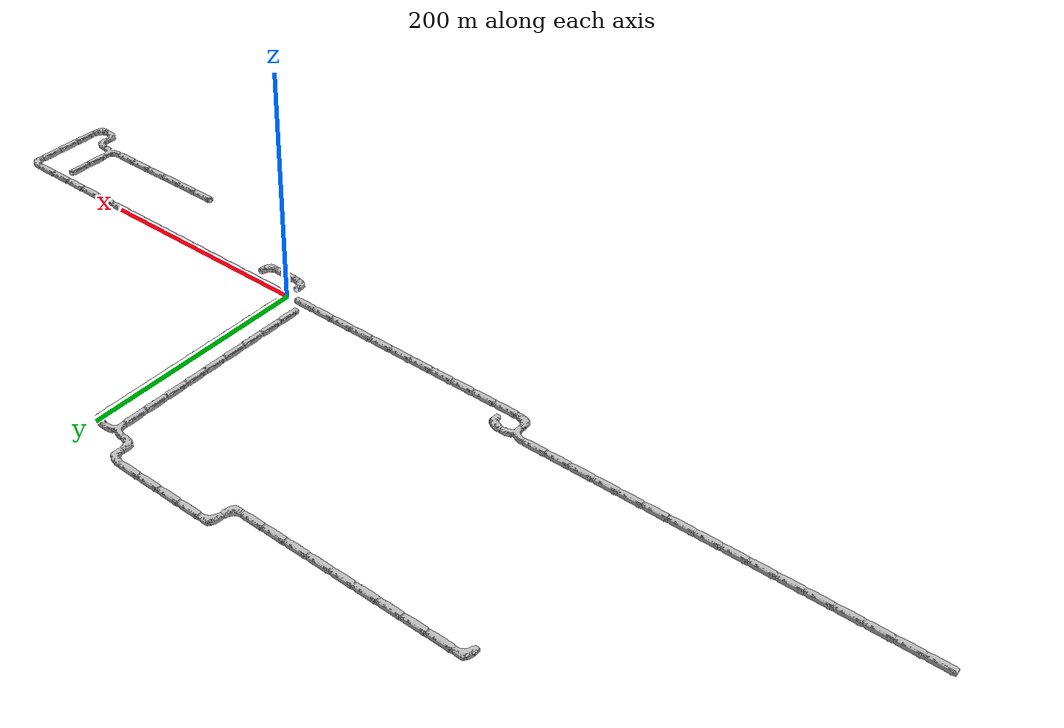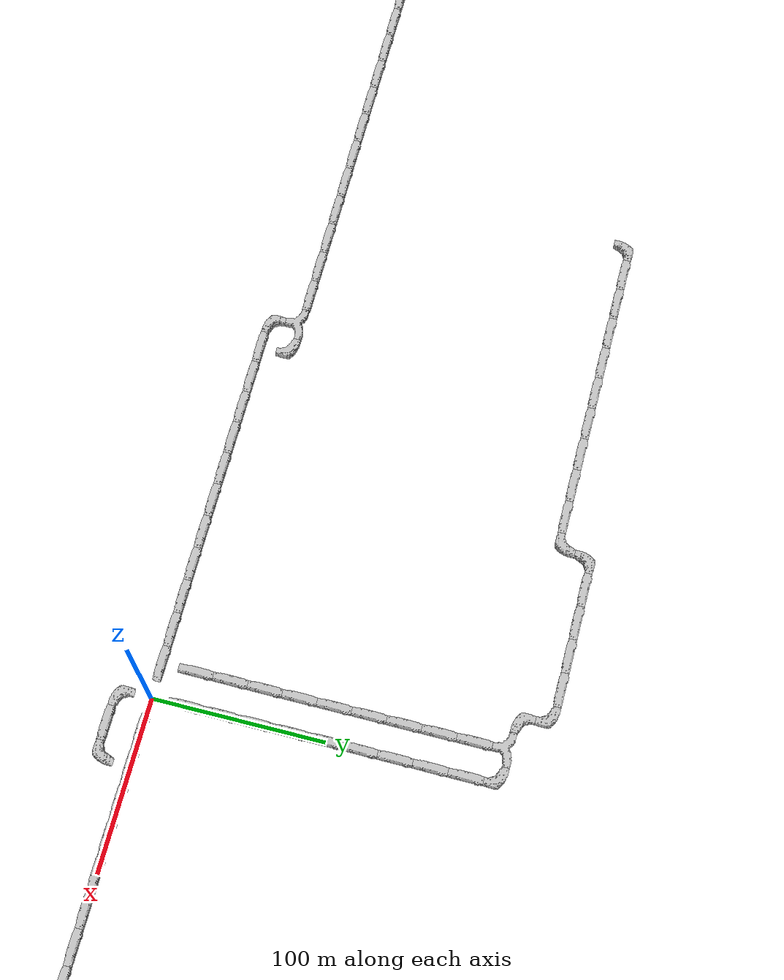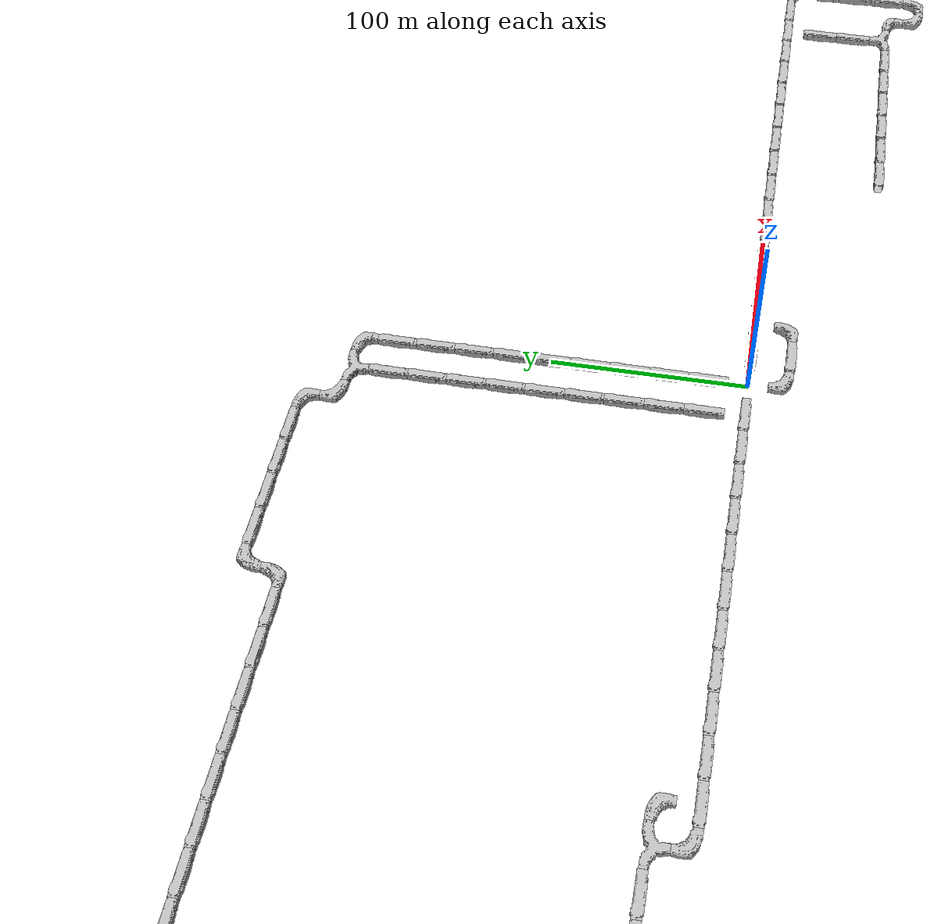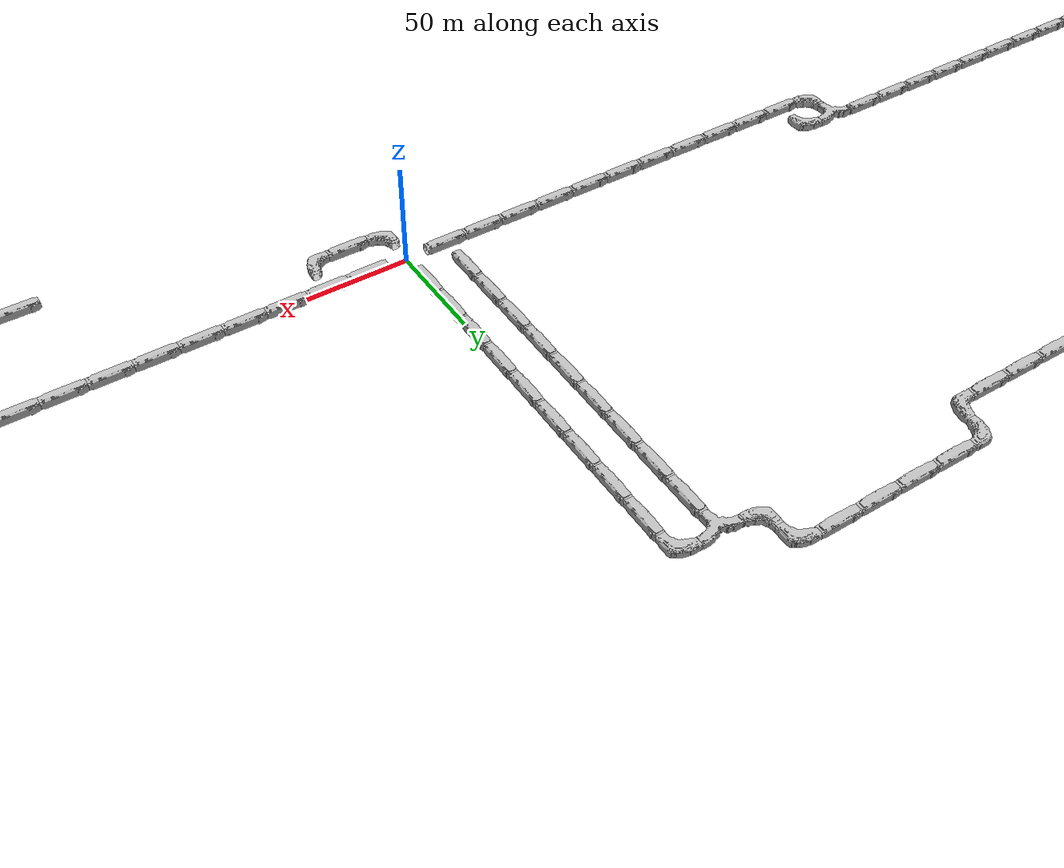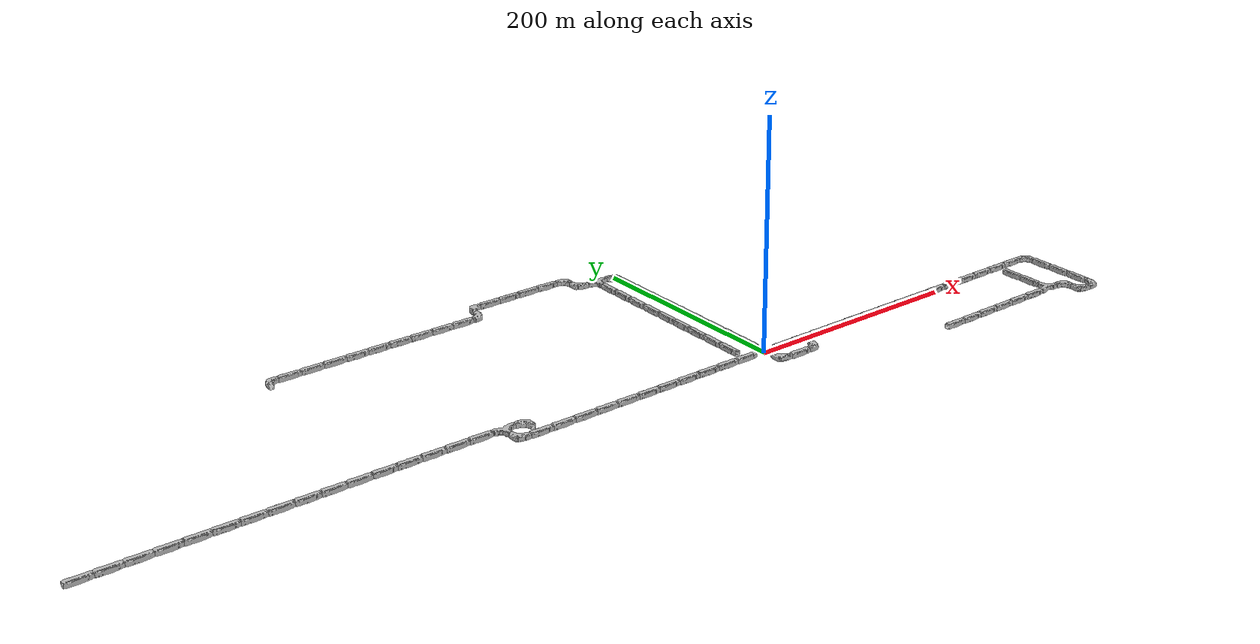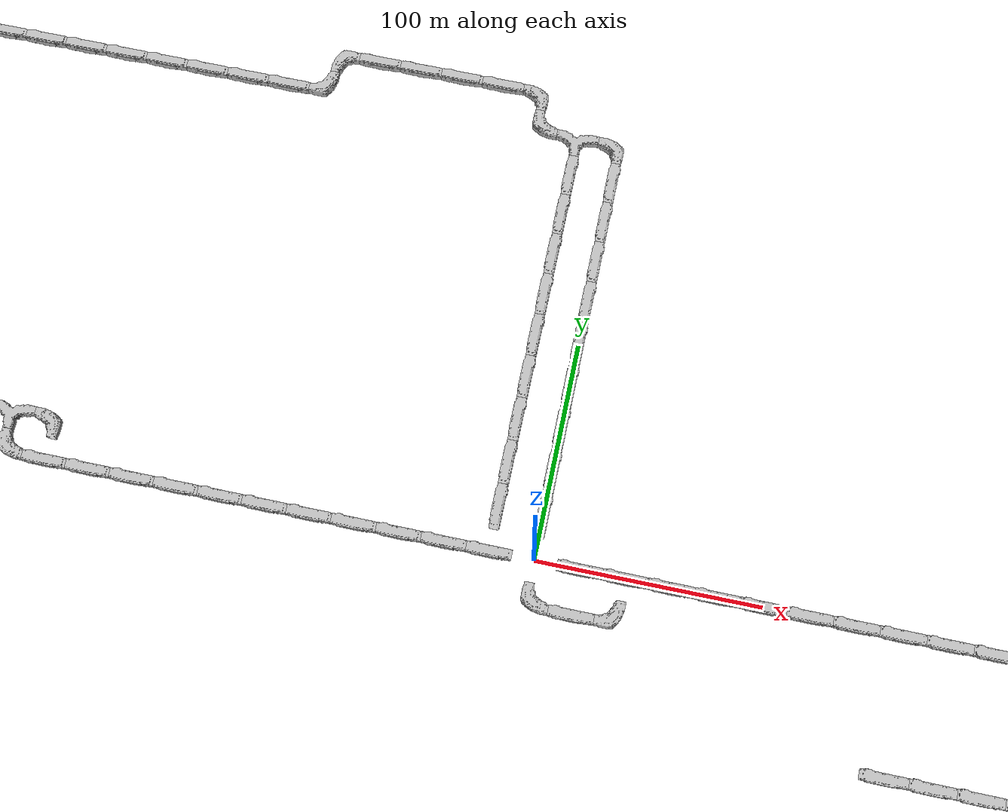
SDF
<sdf version="1.6">
 <world name="cave_2000_32">
  <include>
   <static>true</static>
   <name>cave_1_0</name>
   <pose>20 0 0 0 0 1.5707963267948966</pose>
   <uri>model://cave_straight_20m</uri>
  </include>
  <include>
   <static>true</static>
   <name>cave_2_0</name>
   <pose>40 0 0 0 0 1.5707963267948966</pose>
   <uri>model://cave_straight_20m</uri>
  </include>
  <include>
   <static>true</static>
   <name>cave_3_0</name>
   <pose>60 0 0 0 0 1.5707963267948966</pose>
   <uri>model://cave_straight_20m</uri>
  </include>
  <include>
   <static>true</static>
   <name>cave_4_0</name>
   <pose>80 0 0 0 0 1.5707963267948966</pose>
   <uri>model://cave_straight_20m</uri>
  </include>
  <include>
   <static>true</static>
   <name>cave_5_0</name>
   <pose>100 0 0 0 0 1.5707963267948966</pose>
   <uri>model://cave_straight_20m</uri>
  </include>
  <include>
   <static>true</static>
   <name>cave_6_0</name>
   <pose>120 0 0 0 0 1.5707963267948966</pose>
   <uri>model://cave_straight_20m</uri>
  </include>
  <include>
   <static>true</static>
   <name>cave_7_0</name>
   <pose>140 0 0 0 0 1.5707963267948966</pose>
   <uri>model://cave_straight_20m</uri>
  </include>
  <include>
   <static>true</static>
   <name>cave_8_0</name>
   <pose>160 0 0 0 0 1.5707963267948966</pose>
   <uri>model://cave_straight_20m</uri>
  </include>
  <include>
   <static>true</static>
   <name>cave_9_0</name>
   <pose>180 0 0 0 0 1.5707963267948966</pose>
   <uri>model://cave_straight_20m</uri>
  </include>
  <include>
   <static>true</static>
   <name>cave_10_0</name>
   <pose>200 0 0 0 0 1.5707963267948966</pose>
   <uri>model://cave_straight_20m</uri>
  </include>
  <include>
   <static>true</static>
   <name>cave_11_0</name>
   <pose>220 0 0 0 0 1.5707963267948966</pose>
   <uri>model://cave_straight_20m</uri>
  </include>
  <include>
   <static>true</static>
   <name>cave_12_0</name>
   <pose>240 0 0 0 0 1.5707963267948966</pose>
   <uri>model://cave_straight_20m</uri>
  </include>
  <include>
   <static>true</static>
   <name>cave_13_0</name>
   <pose>260 0 0 0 0 1.5707963267948966</pose>
   <uri>model://cave_straight_20m</uri>
  </include>
  <include>
   <static>true</static>
   <name>cave_14_0</name>
   <pose>280 0 0 0 0 1.5707963267948966</pose>
   <uri>model://cave_straight_20m</uri>
  </include>
  <include>
   <static>true</static>
   <name>cave_15_0</name>
   <pose>300 0 0 0 0 1.5707963267948966</pose>
   <uri>model://cave_straight_20m</uri>
  </include>
  <include>
   <static>true</static>
   <name>cave_16_0</name>
   <pose>320 0 0 0 0 3.141592653589793</pose>
   <uri>model://cave_L_20m</uri>
  </include>
  <include>
   <static>true</static>
   <name>cave_16_-1</name>
   <pose>320 -20 0 0 0 0.0</pose>
   <uri>model://cave_straight_20m</uri>
  </include>
  <include>
   <static>true</static>
   <name>cave_16_-2</name>
   <pose>320 -40 0 0 0 0.0</pose>
   <uri>model://cave_straight_20m</uri>
  </include>
  <include>
   <static>true</static>
   <name>cave_16_-3</name>
   <pose>320 -60 0 0 0 0.0</pose>
   <uri>model://cave_straight_20m</uri>
  </include>
  <include>
   <static>true</static>
   <name>cave_16_-4</name>
   <pose>320 -80 0 0 0 1.5707963267948966</pose>
   <uri>model://cave_L_20m</uri>
  </include>
  <include>
   <static>true</static>
   <name>cave_15_-4</name>
   <pose>300 -80 0 0 0 0.0</pose>
   <uri>model://cave_L_20m</uri>
  </include>
  <include>
   <static>true</static>
   <name>cave_15_-3</name>
   <pose>300 -60 0 0 0 3.141592653589793</pose>
   <uri>model://cave_L_20m</uri>
  </include>
  <include>
   <static>true</static>
   <name>cave_14_-3</name>
   <pose>280 -60 0 0 0 0.0</pose>
   <uri>model://cave_3way_20m</uri>
  </include>
  <include>
   <static>true</static>
   <name>cave_13_-3</name>
   <pose>260 -60 0 0 0 1.5707963267948966</pose>
   <uri>model://cave_straight_20m</uri>
  </include>
  <include>
   <static>true</static>
   <name>cave_12_-3</name>
   <pose>240 -60 0 0 0 1.5707963267948966</pose>
   <uri>model://cave_straight_20m</uri>
  </include>
  <include>
   <static>true</static>
   <name>cave_11_-3</name>
   <pose>220 -60 0 0 0 1.5707963267948966</pose>
   <uri>model://cave_straight_20m</uri>
  </include>
  <include>
   <static>true</static>
   <name>cave_10_-3</name>
   <pose>200 -60 0 0 0 1.5707963267948966</pose>
   <uri>model://cave_straight_20m</uri>
  </include>
  <include>
   <static>true</static>
   <name>cave_9_-3</name>
   <pose>180 -60 0 0 0 1.5707963267948966</pose>
   <uri>model://cave_straight_20m</uri>
  </include>
  <include>
   <static>true</static>
   <name>cave_8_-3</name>
   <pose>160 -60 0 0 0 1.5707963267948966</pose>
   <uri>model://cave_straight_20m</uri>
  </include>
  <include>
   <static>true</static>
   <name>cave_14_-2</name>
   <pose>280 -40 0 0 0 0.0</pose>
   <uri>model://cave_straight_20m</uri>
  </include>
  <include>
   <static>true</static>
   <name>cave_14_-1</name>
   <pose>280 -20 0 0 0 0.0</pose>
   <uri>model://cave_straight_20m</uri>
  </include>
  <include>
   <static>true</static>
   <name>cave_0_-1</name>
   <pose>0 -20 0 0 0 0.0</pose>
   <uri>model://cave_L_20m</uri>
  </include>
  <include>
   <static>true</static>
   <name>cave_1_-1</name>
   <pose>20 -20 0 0 0 1.5707963267948966</pose>
   <uri>model://cave_straight_20m</uri>
  </include>
  <include>
   <static>true</static>
   <name>cave_2_-1</name>
   <pose>40 -20 0 0 0 1.5707963267948966</pose>
   <uri>model://cave_L_20m</uri>
  </include>
  <include>
   <static>true</static>
   <name>cave_-1_0</name>
   <pose>-20 0 0 0 0 1.5707963267948966</pose>
   <uri>model://cave_straight_20m</uri>
  </include>
  <include>
   <static>true</static>
   <name>cave_-2_0</name>
   <pose>-40 0 0 0 0 1.5707963267948966</pose>
   <uri>model://cave_straight_20m</uri>
  </include>
  <include>
   <static>true</static>
   <name>cave_-3_0</name>
   <pose>-60 0 0 0 0 1.5707963267948966</pose>
   <uri>model://cave_straight_20m</uri>
  </include>
  <include>
   <static>true</static>
   <name>cave_-4_0</name>
   <pose>-80 0 0 0 0 1.5707963267948966</pose>
   <uri>model://cave_straight_20m</uri>
  </include>
  <include>
   <static>true</static>
   <name>cave_-5_0</name>
   <pose>-100 0 0 0 0 1.5707963267948966</pose>
   <uri>model://cave_straight_20m</uri>
  </include>
  <include>
   <static>true</static>
   <name>cave_-6_0</name>
   <pose>-120 0 0 0 0 1.5707963267948966</pose>
   <uri>model://cave_straight_20m</uri>
  </include>
  <include>
   <static>true</static>
   <name>cave_-7_0</name>
   <pose>-140 0 0 0 0 1.5707963267948966</pose>
   <uri>model://cave_straight_20m</uri>
  </include>
  <include>
   <static>true</static>
   <name>cave_-8_0</name>
   <pose>-160 0 0 0 0 1.5707963267948966</pose>
   <uri>model://cave_straight_20m</uri>
  </include>
  <include>
   <static>true</static>
   <name>cave_-9_0</name>
   <pose>-180 0 0 0 0 1.5707963267948966</pose>
   <uri>model://cave_straight_20m</uri>
  </include>
  <include>
   <static>true</static>
   <name>cave_-10_0</name>
   <pose>-200 0 0 0 0 1.5707963267948966</pose>
   <uri>model://cave_straight_20m</uri>
  </include>
  <include>
   <static>true</static>
   <name>cave_-11_0</name>
   <pose>-220 0 0 0 0 1.5707963267948966</pose>
   <uri>model://cave_straight_20m</uri>
  </include>
  <include>
   <static>true</static>
   <name>cave_-12_0</name>
   <pose>-240 0 0 0 0 0.0</pose>
   <uri>model://cave_L_20m</uri>
  </include>
  <include>
   <static>true</static>
   <name>cave_-12_1</name>
   <pose>-240 20 0 0 0 3.141592653589793</pose>
   <uri>model://cave_3way_20m</uri>
  </include>
  <include>
   <static>true</static>
   <name>cave_-11_1</name>
   <pose>-220 20 0 0 0 3.141592653589793</pose>
   <uri>model://cave_L_20m</uri>
  </include>
  <include>
   <static>true</static>
   <name>cave_-13_1</name>
   <pose>-260 20 0 0 0 1.5707963267948966</pose>
   <uri>model://cave_straight_20m</uri>
  </include>
  <include>
   <static>true</static>
   <name>cave_-14_1</name>
   <pose>-280 20 0 0 0 1.5707963267948966</pose>
   <uri>model://cave_straight_20m</uri>
  </include>
  <include>
   <static>true</static>
   <name>cave_-15_1</name>
   <pose>-300 20 0 0 0 1.5707963267948966</pose>
   <uri>model://cave_straight_20m</uri>
  </include>
  <include>
   <static>true</static>
   <name>cave_-16_1</name>
   <pose>-320 20 0 0 0 1.5707963267948966</pose>
   <uri>model://cave_straight_20m</uri>
  </include>
  <include>
   <static>true</static>
   <name>cave_-17_1</name>
   <pose>-340 20 0 0 0 1.5707963267948966</pose>
   <uri>model://cave_straight_20m</uri>
  </include>
  <include>
   <static>true</static>
   <name>cave_-18_1</name>
   <pose>-360 20 0 0 0 1.5707963267948966</pose>
   <uri>model://cave_straight_20m</uri>
  </include>
  <include>
   <static>true</static>
   <name>cave_-19_1</name>
   <pose>-380 20 0 0 0 1.5707963267948966</pose>
   <uri>model://cave_straight_20m</uri>
  </include>
  <include>
   <static>true</static>
   <name>cave_-20_1</name>
   <pose>-400 20 0 0 0 1.5707963267948966</pose>
   <uri>model://cave_straight_20m</uri>
  </include>
  <include>
   <static>true</static>
   <name>cave_-21_1</name>
   <pose>-420 20 0 0 0 1.5707963267948966</pose>
   <uri>model://cave_straight_20m</uri>
  </include>
  <include>
   <static>true</static>
   <name>cave_-22_1</name>
   <pose>-440 20 0 0 0 1.5707963267948966</pose>
   <uri>model://cave_straight_20m</uri>
  </include>
  <include>
   <static>true</static>
   <name>cave_-23_1</name>
   <pose>-460 20 0 0 0 1.5707963267948966</pose>
   <uri>model://cave_straight_20m</uri>
  </include>
  <include>
   <static>true</static>
   <name>cave_-24_1</name>
   <pose>-480 20 0 0 0 1.5707963267948966</pose>
   <uri>model://cave_straight_20m</uri>
  </include>
  <include>
   <static>true</static>
   <name>cave_-25_1</name>
   <pose>-500 20 0 0 0 1.5707963267948966</pose>
   <uri>model://cave_straight_20m</uri>
  </include>
  <include>
   <static>true</static>
   <name>cave_-26_1</name>
   <pose>-520 20 0 0 0 1.5707963267948966</pose>
   <uri>model://cave_straight_20m</uri>
  </include>
  <include>
   <static>true</static>
   <name>cave_-27_1</name>
   <pose>-540 20 0 0 0 1.5707963267948966</pose>
   <uri>model://cave_straight_20m</uri>
  </include>
  <include>
   <static>true</static>
   <name>cave_-28_1</name>
   <pose>-560 20 0 0 0 1.5707963267948966</pose>
   <uri>model://cave_straight_20m</uri>
  </include>
  <include>
   <static>true</static>
   <name>cave_0_1</name>
   <pose>0 20 0 0 0 0.0</pose>
   <uri>model://cave_straight_20m</uri>
  </include>
  <include>
   <static>true</static>
   <name>cave_0_2</name>
   <pose>0 40 0 0 0 0.0</pose>
   <uri>model://cave_straight_20m</uri>
  </include>
  <include>
   <static>true</static>
   <name>cave_0_3</name>
   <pose>0 60 0 0 0 0.0</pose>
   <uri>model://cave_straight_20m</uri>
  </include>
  <include>
   <static>true</static>
   <name>cave_0_4</name>
   <pose>0 80 0 0 0 0.0</pose>
   <uri>model://cave_straight_20m</uri>
  </include>
  <include>
   <static>true</static>
   <name>cave_0_5</name>
   <pose>0 100 0 0 0 0.0</pose>
   <uri>model://cave_straight_20m</uri>
  </include>
  <include>
   <static>true</static>
   <name>cave_0_6</name>
   <pose>0 120 0 0 0 0.0</pose>
   <uri>model://cave_straight_20m</uri>
  </include>
  <include>
   <static>true</static>
   <name>cave_0_7</name>
   <pose>0 140 0 0 0 0.0</pose>
   <uri>model://cave_straight_20m</uri>
  </include>
  <include>
   <static>true</static>
   <name>cave_0_8</name>
   <pose>0 160 0 0 0 0.0</pose>
   <uri>model://cave_straight_20m</uri>
  </include>
  <include>
   <static>true</static>
   <name>cave_0_9</name>
   <pose>0 180 0 0 0 0.0</pose>
   <uri>model://cave_straight_20m</uri>
  </include>
  <include>
   <static>true</static>
   <name>cave_0_10</name>
   <pose>0 200 0 0 0 3.141592653589793</pose>
   <uri>model://cave_L_20m</uri>
  </include>
  <include>
   <static>true</static>
   <name>cave_-1_10</name>
   <pose>-20 200 0 0 0 3.141592653589793</pose>
   <uri>model://cave_3way_20m</uri>
  </include>
  <include>
   <static>true</static>
   <name>cave_-1_9</name>
   <pose>-20 180 0 0 0 0.0</pose>
   <uri>model://cave_straight_20m</uri>
  </include>
  <include>
   <static>true</static>
   <name>cave_-1_8</name>
   <pose>-20 160 0 0 0 0.0</pose>
   <uri>model://cave_straight_20m</uri>
  </include>
  <include>
   <static>true</static>
   <name>cave_-1_7</name>
   <pose>-20 140 0 0 0 0.0</pose>
   <uri>model://cave_straight_20m</uri>
  </include>
  <include>
   <static>true</static>
   <name>cave_-1_6</name>
   <pose>-20 120 0 0 0 0.0</pose>
   <uri>model://cave_straight_20m</uri>
  </include>
  <include>
   <static>true</static>
   <name>cave_-1_5</name>
   <pose>-20 100 0 0 0 0.0</pose>
   <uri>model://cave_straight_20m</uri>
  </include>
  <include>
   <static>true</static>
   <name>cave_-1_4</name>
   <pose>-20 80 0 0 0 0.0</pose>
   <uri>model://cave_straight_20m</uri>
  </include>
  <include>
   <static>true</static>
   <name>cave_-1_3</name>
   <pose>-20 60 0 0 0 0.0</pose>
   <uri>model://cave_straight_20m</uri>
  </include>
  <include>
   <static>true</static>
   <name>cave_-1_2</name>
   <pose>-20 40 0 0 0 0.0</pose>
   <uri>model://cave_straight_20m</uri>
  </include>
  <include>
   <static>true</static>
   <name>cave_-1_1</name>
   <pose>-20 20 0 0 0 0.0</pose>
   <uri>model://cave_straight_20m</uri>
  </include>
  <include>
   <static>true</static>
   <name>cave_-2_10</name>
   <pose>-40 200 0 0 0 0.0</pose>
   <uri>model://cave_L_20m</uri>
  </include>
  <include>
   <static>true</static>
   <name>cave_-2_11</name>
   <pose>-40 220 0 0 0 3.141592653589793</pose>
   <uri>model://cave_L_20m</uri>
  </include>
  <include>
   <static>true</static>
   <name>cave_-3_11</name>
   <pose>-60 220 0 0 0 1.5707963267948966</pose>
   <uri>model://cave_straight_20m</uri>
  </include>
  <include>
   <static>true</static>
   <name>cave_-4_11</name>
   <pose>-80 220 0 0 0 1.5707963267948966</pose>
   <uri>model://cave_straight_20m</uri>
  </include>
  <include>
   <static>true</static>
   <name>cave_-5_11</name>
   <pose>-100 220 0 0 0 1.5707963267948966</pose>
   <uri>model://cave_straight_20m</uri>
  </include>
  <include>
   <static>true</static>
   <name>cave_-6_11</name>
   <pose>-120 220 0 0 0 1.5707963267948966</pose>
   <uri>model://cave_straight_20m</uri>
  </include>
  <include>
   <static>true</static>
   <name>cave_-7_11</name>
   <pose>-140 220 0 0 0 -1.5707963267948966</pose>
   <uri>model://cave_L_20m</uri>
  </include>
  <include>
   <static>true</static>
   <name>cave_-7_10</name>
   <pose>-140 200 0 0 0 1.5707963267948966</pose>
   <uri>model://cave_L_20m</uri>
  </include>
  <include>
   <static>true</static>
   <name>cave_-8_10</name>
   <pose>-160 200 0 0 0 1.5707963267948966</pose>
   <uri>model://cave_straight_20m</uri>
  </include>
  <include>
   <static>true</static>
   <name>cave_-9_10</name>
   <pose>-180 200 0 0 0 1.5707963267948966</pose>
   <uri>model://cave_straight_20m</uri>
  </include>
  <include>
   <static>true</static>
   <name>cave_-10_10</name>
   <pose>-200 200 0 0 0 1.5707963267948966</pose>
   <uri>model://cave_straight_20m</uri>
  </include>
  <include>
   <static>true</static>
   <name>cave_-11_10</name>
   <pose>-220 200 0 0 0 1.5707963267948966</pose>
   <uri>model://cave_straight_20m</uri>
  </include>
  <include>
   <static>true</static>
   <name>cave_-12_10</name>
   <pose>-240 200 0 0 0 1.5707963267948966</pose>
   <uri>model://cave_straight_20m</uri>
  </include>
  <include>
   <static>true</static>
   <name>cave_-13_10</name>
   <pose>-260 200 0 0 0 1.5707963267948966</pose>
   <uri>model://cave_straight_20m</uri>
  </include>
  <include>
   <static>true</static>
   <name>cave_-14_10</name>
   <pose>-280 200 0 0 0 1.5707963267948966</pose>
   <uri>model://cave_straight_20m</uri>
  </include>
  <include>
   <static>true</static>
   <name>cave_-15_10</name>
   <pose>-300 200 0 0 0 1.5707963267948966</pose>
   <uri>model://cave_straight_20m</uri>
  </include>
  <include>
   <static>true</static>
   <name>cave_-16_10</name>
   <pose>-320 200 0 0 0 1.5707963267948966</pose>
   <uri>model://cave_straight_20m</uri>
  </include>
  <include>
   <static>true</static>
   <name>cave_-17_10</name>
   <pose>-340 200 0 0 0 -1.5707963267948966</pose>
   <uri>model://cave_L_20m</uri>
  </include>
 </world>
</sdf>

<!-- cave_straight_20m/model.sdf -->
<sdf version="1.6">
  <model name="cave_straight_20m">
    <static>true</static>
    <link name="base">
      <pose>0 0 0 0 0 0</pose>
      <collision name="base_collision">
        <pose>0 0 0 0 0 0</pose>
        <geometry>
          <mesh>
            <uri>model://cave_straight_20m/meshes/cave_straight_20m.dae</uri>
          </mesh>
        </geometry>
        <surface>
          <contact>
             <collide_bitmask>0xffff</collide_bitmask>
          </contact>
          <friction>
            <ode>
              <mu>100</mu>
              <mu2>50</mu2>
            </ode>
          </friction>
        </surface>
      </collision>
      <visual name="base_visual">
        <pose>0 0 0 0 0 0</pose>
        <cast_shadows>false</cast_shadows>
        <geometry>
          <mesh>
            <uri>model://cave_straight_20m/meshes/cave_straight_20m.dae</uri>
          </mesh>
        </geometry>
      </visual>
    </link>
  </model>
</sdf>

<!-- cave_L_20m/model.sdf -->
<sdf version="1.6">
  <model name="cave_L_20m">
    <static>true</static>
    <link name="base">
      <pose>0 0 0 0 0 0</pose>
      <collision name="base_collision">
        <pose>0 0 0 0 0 0</pose>
        <geometry>
          <mesh>
            <uri>model://cave_L_20m/meshes/cave_L_20m.dae</uri>
          </mesh>
        </geometry>
        <surface>
          <contact>
             <collide_bitmask>0xffff</collide_bitmask>
          </contact>
          <friction>
            <ode>
              <mu>100</mu>
              <mu2>50</mu2>
            </ode>
          </friction>
        </surface>
      </collision>
      <visual name="base_visual">
        <pose>0 0 0 0 0 0</pose>
        <cast_shadows>false</cast_shadows>
        <geometry>
          <mesh>
            <uri>model://cave_L_20m/meshes/cave_L_20m.dae</uri>
          </mesh>
        </geometry>
      </visual>
    </link>
  </model>
</sdf>

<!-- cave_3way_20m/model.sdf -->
<sdf version="1.6">
  <model name="cave_3way_20m">
    <static>true</static>
    <link name="base">
      <pose>0 0 0 0 0 0</pose>
      <collision name="base_collision">
        <pose>0 0 0 0 0 0</pose>
        <geometry>
          <mesh>
            <uri>model://cave_3way_20m/meshes/cave_3way_20m.dae</uri>
          </mesh>
        </geometry>
        <surface>
          <contact>
             <collide_bitmask>0xffff</collide_bitmask>
          </contact>
          <friction>
            <ode>
              <mu>100</mu>
              <mu2>50</mu2>
            </ode>
          </friction>
        </surface>
      </collision>
      <visual name="base_visual">
        <cast_shadows>false</cast_shadows>
        <pose>0 0 0 0 0 0</pose>
        <geometry>
          <mesh>
            <uri>model://cave_3way_20m/meshes/cave_3way_20m.dae</uri>
          </mesh>
        </geometry>
      </visual>
    </link>
  </model>
</sdf>
